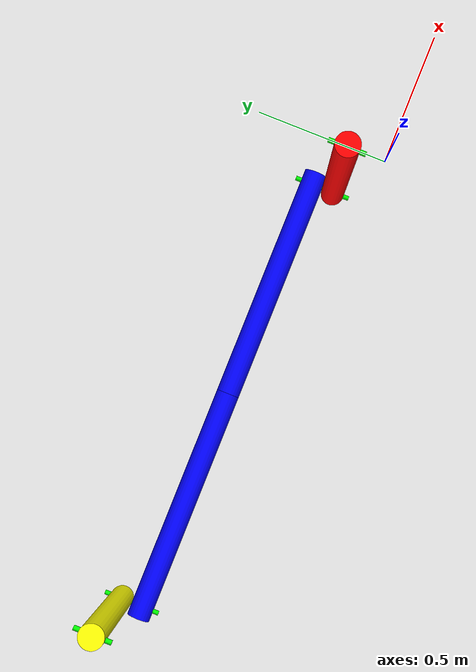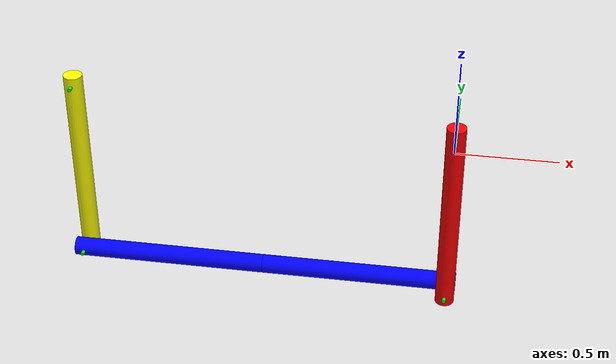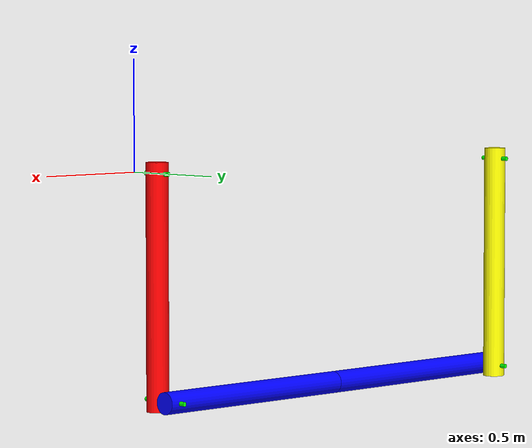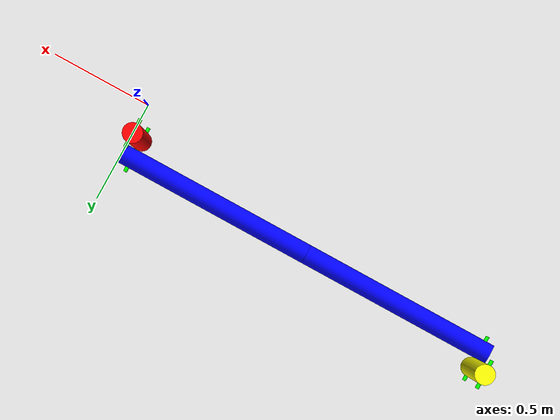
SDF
<sdf version='1.7'>
  <model name='parallel_linkage'>

    <!-- Crank Side -->

    <link name='Crank'>
      <!-- The origin of the Crank frame is defined to be coincident with
           the origin of the x-z plane in the world frame. -->
      <pose>0 0.15 0 0 0 0</pose>
      <inertial>
        <pose>0 0 -0.5 0 0 0</pose>
        <mass>10</mass>
        <inertia>
          <!-- The inertia is based off the cylinder described in the
          Crank_visual tag: radius=0.05m length=1.1m mass=10kg -->
          <ixx>1.01458333</ixx><iyy>1.01458333</iyy><izz>0.0125</izz>
          <ixy>0</ixy><ixz>0</ixz><iyz>0</iyz>
        </inertia>
      </inertial>
      <visual name='Crank_visual'>
        <pose>0 0 -0.5 0 0 0</pose>
        <geometry>
          <cylinder>
            <length>1.1</length>
            <radius>0.05</radius>
          </cylinder>
        </geometry>
        <material>
          <diffuse>1 0 0 1</diffuse>
        </material>
      </visual>
      <!-- Visual showing the pin holding the Crank link to the world -->
      <visual name='Crank_pivot_visual'>
        <pose>0 0 0 1.57 0 0</pose>
        <geometry>
          <cylinder>
            <radius>0.01</radius>
            <length>0.15</length>
          </cylinder>
        </geometry>
        <material>
          <diffuse>0 1 0 1</diffuse>
        </material>
      </visual>
    </link>

    <joint name='CrankJoint' type='revolute'>
      <child>Crank</child>
      <parent>world</parent>
      <axis>
        <xyz>0 1 0</xyz>
        <limit>
          <!-- No limit provided. sdformat defaults to -1, which we parse as
               an actuated joint. -->
        </limit>
        <dynamics>
          <damping>0.1</damping>
        </dynamics>
        <use_parent_model_frame>1</use_parent_model_frame>
      </axis>
    </joint>

    <link name='CrankCoupler'>
      <pose>0 0.25 -1 0 1.57 0</pose>
      <inertial>
        <pose>0 0 -0.5 0 0 0</pose>
        <mass>10</mass>
        <inertia>
          <!-- The inertia is based off the cylinder described in the
               CrankCoupler_visual tag: radius=0.05m length=1.05m mass=10kg -->
          <ixx>0.925</ixx><iyy>0.925</iyy><izz>0.0125</izz>
          <ixy>0</ixy><ixz>0</ixz><iyz>0</iyz>
        </inertia>
      </inertial>
      <visual name='CrankCoupler_visual'>
        <pose>0 0 -0.475 0 0 0</pose>
        <geometry>
          <cylinder>
            <length>1.05</length>
            <radius>0.05</radius>
          </cylinder>
        </geometry>
        <material>
          <diffuse>0 0 1 1</diffuse>
        </material>
      </visual>
      <!-- Visual showing the pin holding the CrankCoupler link to the Crank -->
      <visual name='CrankCoupler_pivot_visual'>
        <pose>0 -0.05 0 1.57 0 0</pose>
        <geometry>
          <cylinder>
            <radius>0.01</radius>
            <length>0.25</length>
          </cylinder>
        </geometry>
        <material>
          <diffuse>0 1 0 1</diffuse>
        </material>
      </visual>
    </link>

    <joint name='CrankCouplerJoint' type='revolute'>
      <parent>Crank</parent>
      <child>CrankCoupler</child>
      <axis>
        <xyz>0 1 0</xyz>
        <limit>
          <!-- Drake parses a zero effort joint as an un-actuated joint. -->
          <effort>0</effort>
        </limit>
        <dynamics>
          <damping>0.1</damping>
        </dynamics>
        <use_parent_model_frame>1</use_parent_model_frame>
      </axis>
    </joint>

    <!-- Rocker Side -->

    <link name='Rocker'>
      <pose>-2 0.35 0 0 0 0</pose>
      <inertial>
        <pose>0 0 -0.5 0 0 0</pose>
        <mass>10</mass>
        <inertia>
          <!-- The inertia is based off the cylinder described in the
               Rocker_visual tag: radius=0.05m length=1.1m mass=10kg -->
          <ixx>1.01458333</ixx><iyy>1.01458333</iyy><izz>0.0125</izz>
          <ixy>0</ixy><ixz>0</ixz><iyz>0</iyz>
        </inertia>
      </inertial>
      <visual name='Rocker_visual'>
        <pose>0 0 -0.5 0 0 0</pose>
        <geometry>
          <cylinder>
            <length>1.1</length>
            <radius>0.05</radius>
          </cylinder>
        </geometry>
        <material>
          <diffuse>1 1 0 1</diffuse>
        </material>
      </visual>
      <!-- Visual showing the pin holding the Rocker link to the world -->
      <visual name='Rocker_pivot_visual'>
        <pose>0 0 0 1.57 0 0</pose>
        <geometry>
          <cylinder>
            <radius>0.01</radius>
            <length>0.15</length>
          </cylinder>
        </geometry>
        <material>
          <diffuse>0 1 0 1</diffuse>
        </material>
      </visual>
    </link>

    <joint name='RockerJoint' type='revolute'>
      <child>Rocker</child>
      <parent>world</parent>
      <axis>
        <xyz>0 1 0</xyz>
        <limit>
          <!-- Drake parses a zero effort joint as an un-actuated joint. -->
          <effort>0</effort>
        </limit>
        <dynamics>
          <damping>0.1</damping>
        </dynamics>
        <use_parent_model_frame>1</use_parent_model_frame>
      </axis>
    </joint>

    <link name='RockerCoupler'>
      <pose>-2 0.25 -1 0 -1.57 0</pose>
      <inertial>
        <pose>0 0 -0.5 0 0 0</pose>
        <mass>10</mass>
        <inertia>
          <!-- The inertia is based off the cylinder described in the
               RockerCoupler_visual tag: radius=0.05m length=1.05m mass=10kg-->
          <ixx>0.925</ixx><iyy>0.925</iyy><izz>0.0125</izz>
          <ixy>0</ixy><ixz>0</ixz><iyz>0</iyz>
        </inertia>
      </inertial>
      <visual name='RockerCoupler_visual'>
        <pose>0 0 -0.475 0 0 0</pose>
        <geometry>
          <cylinder>
            <length>1.05</length>
            <radius>0.05</radius>
          </cylinder>
        </geometry>
        <material>
          <diffuse>0 0 1 1</diffuse>
        </material>
      </visual>
      <!-- Visual showing the pin holding the RockerCoupler link to the Rocker
       -->
      <visual name='RockerCoupler_pivot_visual'>
        <pose>0 0.05 0 1.57 0 0</pose>
        <geometry>
          <cylinder>
            <radius>0.01</radius>
            <length>0.25</length>
          </cylinder>
        </geometry>
        <material>
          <diffuse>0 1 0 1</diffuse>
        </material>
      </visual>
    </link>

    <joint name='RockerCouplerJoint' type='revolute'>
      <parent>Rocker</parent>
      <child>RockerCoupler</child>
      <axis>
        <xyz>0 1 0</xyz>
        <limit>
          <!-- Drake parses a zero effort joint as an un-actuated joint. -->
          <effort>0</effort>
        </limit>
        <dynamics>
          <damping>0.1</damping>
        </dynamics>
        <use_parent_model_frame>1</use_parent_model_frame>
      </axis>
    </joint>

    <!-- Two coincident frames at point E. One attached to each body on the
         two sides to be welded together -->

    <frame name="CrankCouplerWeld" attached_to="CrankCoupler">
      <pose relative_to="CrankCoupler">0 0 -1 0 0 0</pose>
    </frame>

    <frame name="RockerCouplerWeld" attached_to="RockerCoupler">
      <pose relative_to="RockerCoupler">0 0 -1 0 0 0</pose>
    </frame>

  </model>
</sdf>
